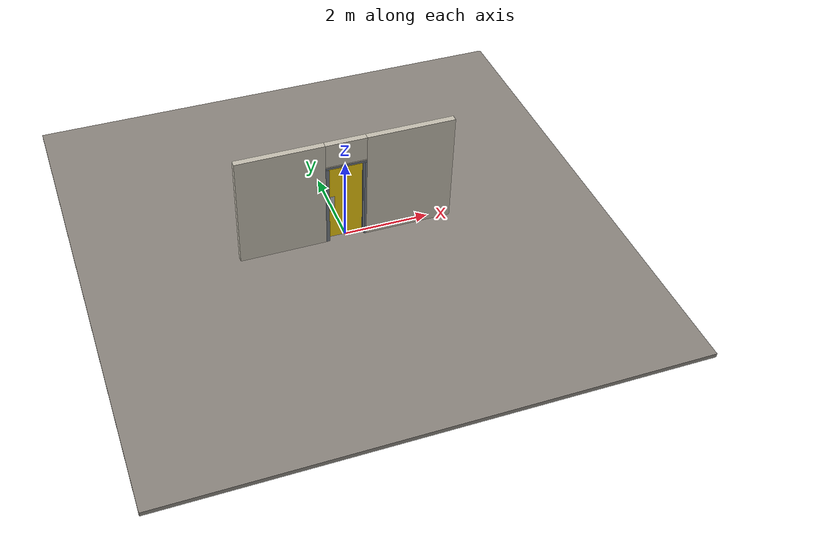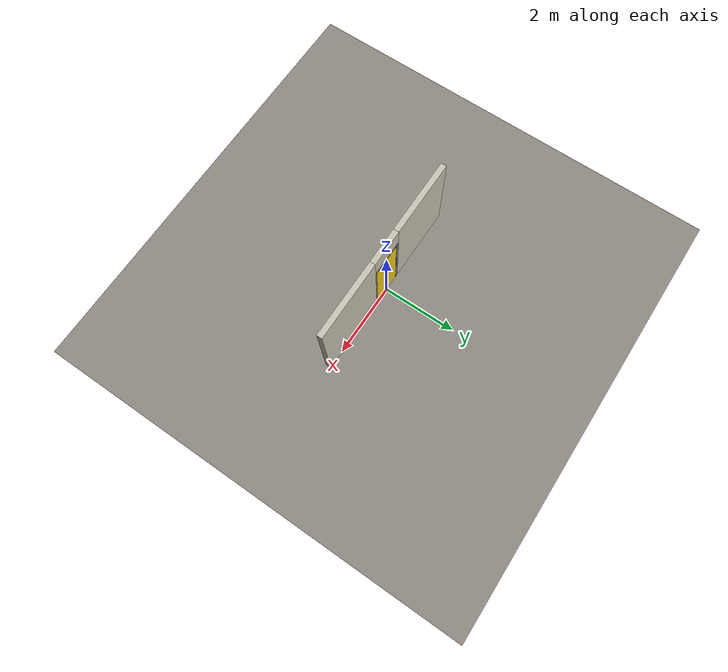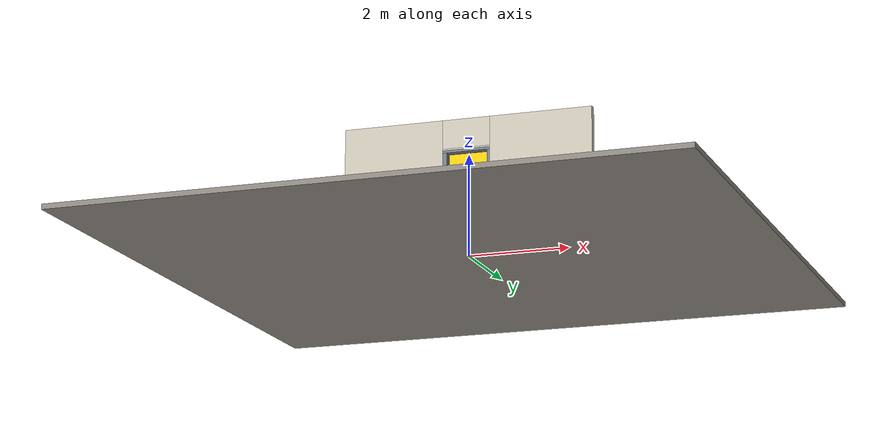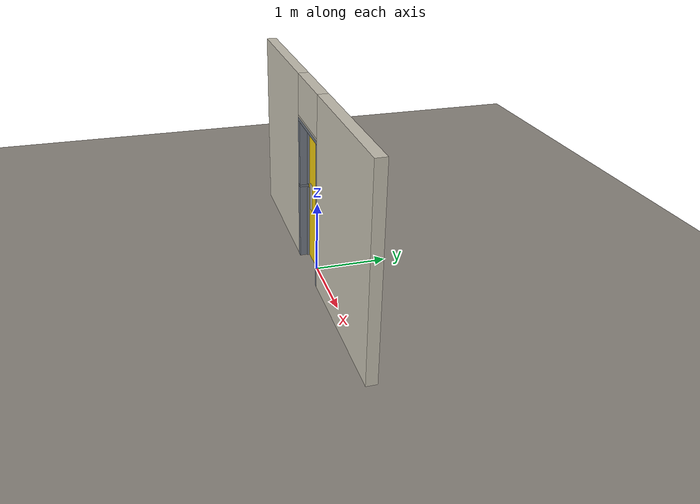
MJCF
<?xml version="1.0" ?>
<mujoco model="db0418_swing_single_minimal">
  <compiler angle="radian" meshdir="../../hardware" texturedir="../../textures" autolimits="true" inertiafromgeom="false"/>
  <option timestep="0.002" integrator="implicitfast" cone="elliptic" impratio="10" noslip_iterations="3">
    <flag multiccd="enable"/>
  </option>
  <size memory="16M"/>
  <default>
    <geom condim="4" solref="0.005 1" solimp="0.95 0.99 0.001"/>
    <joint solreflimit="0.005 1" solimplimit="0.95 0.99 0.001"/>
    <tendon solreflimit="0.005 1"/>
    <equality solref="0.002 1"/>
  </default>
  <visual>
    <headlight ambient="0.4 0.4 0.4" diffuse="0.7 0.7 0.7" specular="0.2 0.2 0.2"/>
    <quality shadowsize="4096"/>
    <map znear="0.01" zfar="60"/>
  </visual>
  <asset>
    <material name="mat_floor" rgba="0.55 0.53 0.5 1" specular="0.2" shininess="0.15" reflectance="0"/>
    <material name="mat_wall" rgba="0.78 0.76 0.7 1" specular="0.2" shininess="0.1" reflectance="0"/>
    <material name="mat_leaf" rgba="0.95 0.8 0.05 1" specular="0.23" shininess="0.32" reflectance="0.02"/>
    <material name="mat_rivet" rgba="0.55 0.56 0.58 1" specular="0.8" shininess="0.55" reflectance="0.4"/>
    <material name="mat_hinge" rgba="0.45 0.3 0.22 1" specular="0.5" shininess="0.1" reflectance="0.2"/>
    <material name="mat_op_stainless" rgba="0.75 0.76 0.77 1" specular="0.8" shininess="0.65" reflectance="0.4"/>
    <material name="mat_deadbolt" rgba="0.85 0.66 0.3 1" specular="0.8" shininess="0.75" reflectance="0.4"/>
    <material name="mat_frame" rgba="0.45 0.48 0.52 1" specular="0.32" shininess="0.6" reflectance="0.08"/>
    <material name="mat_seal" rgba="0.1 0.1 0.1 1" specular="0.2" shininess="0.1" reflectance="0"/>
    <material name="mat_closer" rgba="0.22 0.17 0.13 1" specular="0.8" shininess="0.6" reflectance="0.4"/>
    <texture name="skybox" type="skybox" builtin="gradient" rgb1="0.6 0.7 0.85" rgb2="0.9 0.92 0.95" width="256" height="256"/>
  </asset>
  <worldbody>
    <light name="sun" pos="1.5 -2.5 4" dir="-0.3 0.5 -0.8" directional="true" diffuse="0.8 0.8 0.8" specular="0.3 0.3 0.3" castshadow="true"/>
    <light name="fill" pos="-1.5 2.5 3" dir="0.3 -0.5 -0.7" directional="true" diffuse="0.35 0.35 0.4" castshadow="false"/>
    <camera name="robot_view" pos="0 -2.604687 1.734312" xyaxes="1 0 0 0 0.26963 0.962964" fovy="52"/>
    <camera name="far_view" pos="0 2.479687 1.734312" xyaxes="-1 0 0 0 -0.26963 0.962964" fovy="52"/>
    <camera name="iso" pos="-1.932062 -2.197938 2.141063" xyaxes="0.741536 -0.670913 0 0.242917 0.268487 0.932151" fovy="46"/>
    <camera name="detail_handle" pos="-0.1235 -0.8625 1.245" xyaxes="0.97561 0.219512 0 -0.070934 0.315262 0.94635" fovy="38"/>
    <geom name="floor" type="box" size="6 6 0.05" pos="0 0 -0.05" material="mat_floor" group="0" contype="1" conaffinity="1" friction="0.8 0.005 0.0001" density="2400"/>
    <geom name="wall_left" type="box" size="1.00525 0.0725 1.35" pos="-1.49475 -0.0625 1.35" material="mat_wall" group="0" contype="1" conaffinity="1" friction="0.6 0.005 0.0001" density="800"/>
    <geom name="wall_right" type="box" size="1.02025 0.0725 1.35" pos="1.47975 -0.0625 1.35" material="mat_wall" group="0" contype="1" conaffinity="1" friction="0.6 0.005 0.0001" density="800"/>
    <geom name="wall_header" type="box" size="0.4745 0.0725 0.2875" pos="-0.015 -0.0625 2.4125" material="mat_wall" group="0" contype="1" conaffinity="1" friction="0.6 0.005 0.0001" density="800"/>
    <geom name="jamb_hinge" type="box" size="0.025 0.0725 1.0225" pos="0.4345 -0.0625 1.0225" material="mat_frame" group="0" contype="1" conaffinity="1" friction="0.6 0.005 0.0001" density="300"/>
    <geom name="strike_1105_wall_n" type="box" size="0.04 0.06275 0.0155" pos="-0.4495 -0.07225 1.105" material="mat_frame" group="0" contype="1" conaffinity="1" friction="0.6 0.005 0.0001" density="300"/>
    <geom name="strike_1105_wall_p" type="box" size="0.0157 0.003 0.0155" pos="-0.4252 0.0125 1.105" material="mat_frame" group="0" contype="1" conaffinity="1" friction="0.6 0.005 0.0001" density="300"/>
    <geom name="strike_1105_back" type="box" size="0.0253 0.0095 0.0155" pos="-0.4642 0 1.105" material="mat_frame" group="0" contype="1" conaffinity="1" friction="0.6 0.005 0.0001" density="300"/>
    <geom name="jamb_strike_0" type="box" size="0.04 0.0725 0.54475" pos="-0.4495 -0.0625 0.54475" material="mat_frame" group="0" contype="1" conaffinity="1" friction="0.6 0.005 0.0001" density="300"/>
    <geom name="jamb_strike_1" type="box" size="0.04 0.0725 0.46225" pos="-0.4495 -0.0625 1.58275" material="mat_frame" group="0" contype="1" conaffinity="1" friction="0.6 0.005 0.0001" density="300"/>
    <geom name="jamb_head" type="box" size="0.4745 0.0725 0.025" pos="-0.015 -0.0625 2.07" material="mat_frame" group="0" contype="1" conaffinity="1" friction="0.6 0.005 0.0001" density="300"/>
    <geom name="head_stud" type="box" size="0.4745 0.0725 0.015" pos="-0.015 -0.0625 2.11" material="mat_wall" group="0" contype="1" conaffinity="1" friction="0.6 0.005 0.0001" density="500"/>
    <geom name="stop_hinge" type="box" size="0.0055 0.016 1.0225" pos="0.404 -0.0195 1.0225" material="mat_frame" group="0" contype="1" conaffinity="1" friction="0.6 0.005 0.0001" density="300"/>
    <geom name="stop_strike" type="box" size="0.0055 0.016 0.53875" pos="-0.404 -0.0195 0.53875" material="mat_frame" group="0" contype="1" conaffinity="1" friction="0.6 0.005 0.0001" density="300"/>
    <geom name="stop_strike_1" type="box" size="0.0055 0.016 0.45625" pos="-0.404 -0.0195 1.58875" material="mat_frame" group="0" contype="1" conaffinity="1" friction="0.6 0.005 0.0001" density="300"/>
    <geom name="stop_head" type="box" size="0.4095 0.016 0.0055" pos="0 -0.0195 2.0395" material="mat_frame" group="0" contype="1" conaffinity="1" friction="0.6 0.005 0.0001" density="300"/>
    <site name="approach_point" pos="0 -1.5 0" quat="1 0 0 0" size="0.05" rgba="0.2 0.9 0.2 0.5" group="4"/>
    <site name="goal_point" pos="0 1.5 0" quat="1 0 0 0" size="0.05" rgba="0.2 0.9 0.2 0.5" group="4"/>
    <site name="door_plane_center" pos="0 0 1.0225" quat="1 0 0 0" size="0.02" rgba="0.2 0.9 0.2 0.5" group="4"/>
    <body name="leaf" pos="0.4095 0 0">
      <inertial pos="-0.411446 -0.000025 1.024613" mass="81.375156" quat="0.500133 -0.500069 -0.499933 -0.499865" diaginertia="4.501399395 27.828369204 32.329268362"/>
      <joint name="leaf_hinge" type="hinge" axis="0 0 -1" pos="-0.003 0.01 0" limited="true" range="0 1.745329" solreflimit="0.02 1" damping="10.160326" frictionloss="17.356531" stiffness="19.0031" springref="-2.141756" armature="0.02"/>
      <geom name="leaf_slab" type="box" size="0.4065 0.003 1.016" pos="-0.4095 0 1.025" material="mat_leaf" group="0" contype="1" conaffinity="1" friction="0.45 0.005 0.0001" density="1"/>
      <geom name="leaf_push_plate_n" type="box" size="0.05 0.0008 0.2" pos="-0.711 -0.0038 0.965" material="mat_op_stainless" group="1" contype="0" conaffinity="0" density="7900"/>
      <site name="leaf_push_plate_push_n" pos="-0.711 -0.003 0.965" quat="1 0 0 0" size="0.012" rgba="0.2 0.9 0.2 0.5" group="4"/>
      <site name="leaf_edge_mid" pos="-0.816 0 1.016" quat="1 0 0 0" size="0.02" rgba="0.2 0.9 0.2 0.5" group="4"/>
    </body>
  </worldbody>
  <sensor>
    <jointpos name="leaf_hinge_pos" joint="leaf_hinge"/>
    <jointvel name="leaf_hinge_vel" joint="leaf_hinge"/>
  </sensor>
</mujoco>
